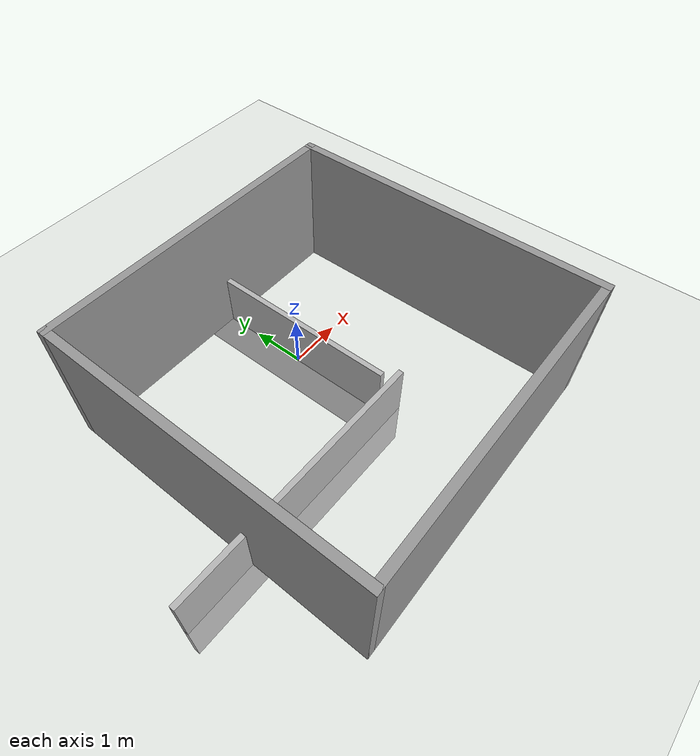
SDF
<sdf version="1.7">
 <world name="default">
  <model name="ground_plane">
   <static>1</static>
   <link name="link">
    <collision name="collision">
     <geometry><plane><normal>0 0 1</normal><size>100 100</size></plane></geometry>
     <surface>
      <contact><collide_bitmask>65535</collide_bitmask></contact>
      <friction><ode><mu>100</mu><mu2>50</mu2></ode></friction>
     </surface>
    </collision>
    <visual name="visual">
     <cast_shadows>0</cast_shadows>
     <geometry><plane><normal>0 0 1</normal><size>100 100</size></plane></geometry>
     <material>
      <script><uri>file://media/materials/scripts/gazebo.material</uri><name>Gazebo/Grey</name></script>
     </material>
    </visual>
   </link>
  </model>
  <light name="sun" type="directional">
   <pose>0 0 10 0 -0 0</pose>
   <diffuse>0.8 0.8 0.8 1</diffuse>
   <specular>0.2 0.2 0.2 1</specular>
   <attenuation>
    <range>1000</range>
    <constant>0.9</constant>
    <linear>0.01</linear>
    <quadratic>0.001</quadratic>
   </attenuation>
   <direction>-0.5 0.1 -0.9</direction>
   <spot><inner_angle>0</inner_angle><outer_angle>0</outer_angle><falloff>0</falloff></spot>
  </light>
  <scene><shadows>0</shadows><ambient>0.4 0.4 0.4 1</ambient><background>0.7 0.7 0.7 1</background></scene>
  <physics type="ode">
   <real_time_update_rate>1000</real_time_update_rate>
   <max_step_size>0.001</max_step_size>
   <real_time_factor>1</real_time_factor>
   <ode>
    <solver>
     <type>quick</type>
     <iters>150</iters>
     <precon_iters>0</precon_iters>
     <sor>1.4</sor>
     <use_dynamic_moi_rescaling>1</use_dynamic_moi_rescaling>
    </solver>
    <constraints>
     <cfm>1e-05</cfm>
     <erp>0.2</erp>
     <contact_max_correcting_vel>2000</contact_max_correcting_vel>
     <contact_surface_layer>0.01</contact_surface_layer>
    </constraints>
   </ode>
  </physics>
  <gravity>0 0 -9.8</gravity>
  <magnetic_field>6e-06 2.3e-05 -4.2e-05</magnetic_field>
  <atmosphere type="adiabatic"/>
  <audio><device>default</device></audio>
  <spherical_coordinates>
   <surface_model>EARTH_WGS84</surface_model>
   <latitude_deg>0</latitude_deg>
   <longitude_deg>0</longitude_deg>
   <elevation>0</elevation>
   <heading_deg>0</heading_deg>
  </spherical_coordinates>
  <model name="wall">
   <pose>-0.405 -1.185 0 0 -0 0</pose>
   <link name="Wall_1">
    <collision name="Wall_1_Collision">
     <geometry><box><size>6 0.15 2.5</size></box></geometry>
     <pose>0 0 1.25 0 -0 0</pose>
    </collision>
    <visual name="Wall_1_Visual">
     <pose>0 0 1.25 0 -0 0</pose>
     <geometry><box><size>6 0.15 2.5</size></box></geometry>
     <material>
      <script><uri>file://media/materials/scripts/gazebo.material</uri><name>Gazebo/Grey</name></script>
      <ambient>1 1 1 1</ambient>
     </material>
     <meta><layer>0</layer></meta>
    </visual>
    <pose>-0 -2.925 0 0 -0 0</pose>
   </link>
   <link name="Wall_2">
    <collision name="Wall_2_Collision">
     <geometry><box><size>6 0.15 2.5</size></box></geometry>
     <pose>0 0 1.25 0 -0 0</pose>
    </collision>
    <visual name="Wall_2_Visual">
     <pose>0 0 1.25 0 -0 0</pose>
     <geometry><box><size>6 0.15 2.5</size></box></geometry>
     <material>
      <script><uri>file://media/materials/scripts/gazebo.material</uri><name>Gazebo/Grey</name></script>
      <ambient>1 1 1 1</ambient>
     </material>
     <meta><layer>0</layer></meta>
    </visual>
    <pose>2.925 0 0 0 -0 1.5708</pose>
   </link>
   <link name="Wall_3">
    <collision name="Wall_3_Collision">
     <geometry><box><size>6 0.15 2.5</size></box></geometry>
     <pose>0 0 1.25 0 -0 0</pose>
    </collision>
    <visual name="Wall_3_Visual">
     <pose>0 0 1.25 0 -0 0</pose>
     <geometry><box><size>6 0.15 2.5</size></box></geometry>
     <material>
      <script><uri>file://media/materials/scripts/gazebo.material</uri><name>Gazebo/Grey</name></script>
      <ambient>1 1 1 1</ambient>
     </material>
     <meta><layer>0</layer></meta>
    </visual>
    <pose>-0 2.925 0 0 -0 3.14159</pose>
   </link>
   <link name="Wall_4">
    <collision name="Wall_4_Collision">
     <geometry><box><size>6 0.15 2.5</size></box></geometry>
     <pose>0 0 1.25 0 -0 0</pose>
    </collision>
    <visual name="Wall_4_Visual">
     <pose>0 0 1.25 0 -0 0</pose>
     <geometry><box><size>6 0.15 2.5</size></box></geometry>
     <material>
      <script><uri>file://media/materials/scripts/gazebo.material</uri><name>Gazebo/Grey</name></script>
      <ambient>1 1 1 1</ambient>
     </material>
     <meta><layer>0</layer></meta>
    </visual>
    <pose>-2.925 0 0 0 -0 -1.5708</pose>
   </link>
   <static>1</static>
  </model>
  <model name="room_wall_2x5m">
   <link name="link">
    <visual name="visual">
     <geometry><box><size>0.1 5 2</size></box></geometry>
     <material>
      <script>
       <uri>model://room_wall_2x5m/material/script</uri>
       <uri>model://room_wall_2x5m/material/textures</uri>
       <name>Custom/room_wall_2x5m</name>
      </script>
     </material>
    </visual>
    <collision name="collision"><geometry><box><size>0.1 5 2</size></box></geometry></collision>
   </link>
   <static>1</static>
   <pose>0.038672 0.65695 0 0 -0 0</pose>
  </model>
  <model name="room_wall_2x5m_0">
   <link name="link">
    <visual name="visual">
     <geometry><box><size>0.1 5 2</size></box></geometry>
     <material>
      <script>
       <uri>model://room_wall_2x5m/material/script</uri>
       <uri>model://room_wall_2x5m/material/textures</uri>
       <name>Custom/room_wall_2x5m</name>
      </script>
     </material>
    </visual>
    <collision name="collision"><geometry><box><size>0.1 5 2</size></box></geometry></collision>
   </link>
   <static>1</static>
   <pose>-2.21442 -2.01023 0 0 0 -1.58298</pose>
  </model>
 </world>
</sdf>
